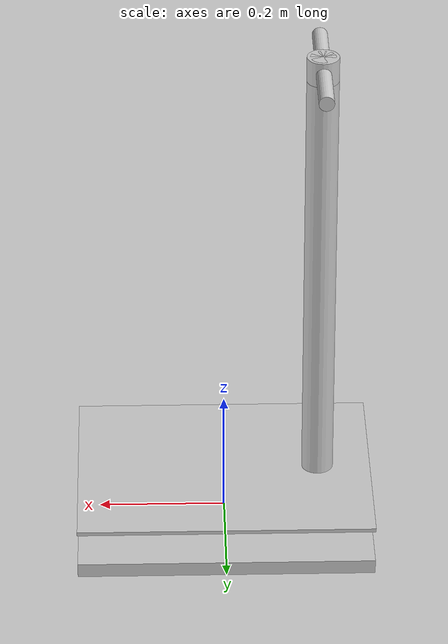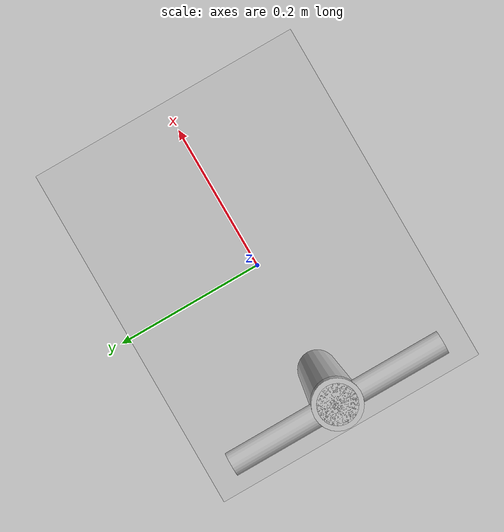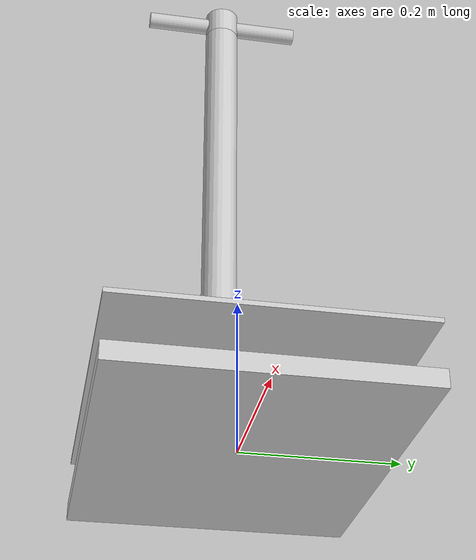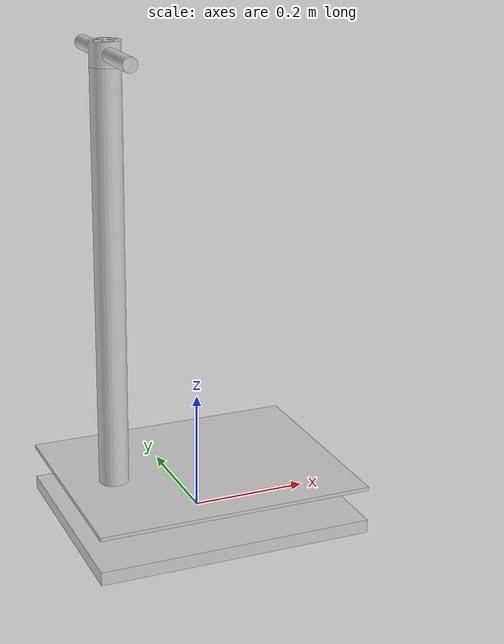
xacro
<?xml version="1.0"?>

<robot xmlns:sensor="http://playerstage.sourceforge.net/gazebo/xmlschema/#sensor"
  xmlns:controller="http://playerstage.sourceforge.net/gazebo/xmlschema/#controller"
  xmlns:interface="http://playerstage.sourceforge.net/gazebo/xmlschema/#interface"
  xmlns:xacro="http://ros.org/wiki/xacro"
  name="kurtana_rack">

  <xacro:include filename="$(find uos_common_urdf)/common.xacro" />

  <property name="rackplate_length" value="0.47" />
  <property name="rackplate_width" value="0.368" />
  <property name="rackplate_height" value="0.023" />
  <property name="rackplate_mass" value="0.500" />
  <property name="baseplate_length" value="0.47" />
  <property name="baseplate_width" value="0.368" />
  <property name="baseplate_height" value="0.006" />
  <property name="baseplate_mass" value="0.500" />
  <property name="rackgap" value="0.055" />
  <property name="pole_radius" value="0.025"/>
  <property name="pole_length" value="0.70"/>
  <property name="pole_x_offset" value="-0.15"/>
  <property name="pole_mass" value="3.0"/>
  <property name="innerpole_radius" value="0.02"/>
  <property name="innerpole_length" value="0.555"/>
  <property name="innerpole_z_offset" value="0.04"/>
  <property name="innerpole_mass" value="2.0"/>
  <property name="poletop_radius" value="0.025"/>
  <property name="poletop_length" value="0.04"/>
  <property name="poletop_mass" value="0.1"/>
  <property name="pitchpole_radius" value="0.012"/>
  <property name="pitchpole_length" value="0.23"/>
  <property name="pitchpole_mass" value="0.050"/>

  <!-- *** KURTana Rack *** -->

  <!-- rackplate = lower plate-->
  <link name="kurtana_rackplate_link">
    <visual>
      <origin xyz="0 0 0" rpy="0 0 0" />
      <geometry>
        <box size="${rackplate_length} ${rackplate_width} ${rackplate_height}" />
      </geometry>

      <material name="grey">
        <color rgba="0.8 0.8 0.8 1"/>
      </material>
    </visual>
    <collision>
      <origin xyz="0 0 0" rpy="0 0 0" />
      <geometry>
        <box size="${rackplate_length} ${rackplate_width} ${rackplate_height}" />
      </geometry>
    </collision>
    <xacro:box_inertial x="${rackplate_length}" y="${rackplate_width}" z="${rackplate_height}" mass="${rackplate_mass}" />
  </link>

  <!-- baseplate = upper plate -->
  <joint name="kurtana_baseplate_joint" type="fixed">
    <parent link="kurtana_rackplate_link"/>
    <child link="kurtana_baseplate_link"/>
    <origin xyz="0 0 ${rackplate_height/2 + rackgap + baseplate_height/2}"/>
  </joint>

  <link name="kurtana_baseplate_link">
    <visual>
      <origin xyz="0 0 0" rpy="0 0 0" />
      <geometry>
        <box size="${baseplate_length} ${baseplate_width} ${baseplate_height}" />
      </geometry>

      <material name="grey" />
    </visual>
    <collision>
      <origin xyz="0 0 0" rpy="0 0 0" />
      <geometry>
        <box size="${baseplate_length} ${baseplate_width} ${baseplate_height}" />
      </geometry>
    </collision>
    <xacro:box_inertial x="${baseplate_length}" y="${baseplate_width}" z="${baseplate_height}" mass="${baseplate_mass}" />
  </link>

  <!-- pole = lower, fixed, hollow pole -->
  <joint name="kurtana_pole_joint" type="fixed">
    <parent link="kurtana_baseplate_link"/>
    <child link="kurtana_pole_link"/>
    <origin xyz="${pole_x_offset} 0 ${pole_length/2}"/>
  </joint>

  <link name="kurtana_pole_link">
    <visual>
      <origin xyz="0 0 0" rpy="0 0 0" />
      <geometry>
        <cylinder radius="${pole_radius}" length="${pole_length}"/>
      </geometry>

      <material name="grey" />
    </visual>
    <collision>
      <origin xyz="0 0 0" rpy="0 0 0" />
      <geometry>
        <cylinder radius="${pole_radius}" length="${pole_length}"/>
      </geometry>
    </collision>
    <xacro:cylinder_inertial radius="${pole_radius}" length="${pole_length}" mass="${pole_mass}" />
  </link>

  <!-- innerpole = upper, inner, moving pole -->
  <joint name="kurtana_stretch_joint" type="prismatic">
    <parent link="kurtana_pole_link"/>
    <child link="kurtana_innerpole_stretch_link"/>
    <origin xyz="0 0 ${innerpole_z_offset + pole_length/2 - innerpole_length/2}" rpy="0 0 0"/>
    <limit effort="1000.0" lower="0" upper="${innerpole_length - innerpole_z_offset}" velocity="0.5"/>
    <axis xyz="0 0 1"/>
  </joint>

  <link name="kurtana_innerpole_stretch_link">
    <visual>
      <origin xyz="0 0 0" rpy="0 0 0" />
      <geometry>
        <cylinder radius="${innerpole_radius}" length="${innerpole_length}"/>
      </geometry>
      <material name="grey" />
    </visual>
    <collision>
      <origin xyz="0 0 0" rpy="0 0 0" />
      <geometry>
        <cylinder radius="${innerpole_radius}" length="${innerpole_length}"/>
      </geometry>
    </collision>
    <xacro:cylinder_inertial radius="${innerpole_radius}" length="${innerpole_length}" mass="${innerpole_mass}" />
  </link>

  <joint name="kurtana_roll_joint" type="revolute">
    <parent link="kurtana_innerpole_stretch_link"/>
    <child link="kurtana_poletop_roll_link"/>
    <origin xyz="0 0 ${innerpole_length/2 - innerpole_z_offset/2}" rpy="0 0 0"/>
    <axis xyz="0 0 1"/>
    <limit effort="1000.0" lower="${-M_PI/2}" upper="${M_PI/2}" velocity="2.0"/>
  </joint>

  <link name="kurtana_poletop_roll_link">
    <visual>
      <origin xyz="0 0 0" rpy="0 0 0" />
      <geometry>
        <cylinder radius="${poletop_radius}" length="${poletop_length}"/>
      </geometry>
      <material name="grey" />
    </visual>
    <collision>
      <origin xyz="0 0 0" rpy="0 0 0" />
      <geometry>
        <cylinder radius="${poletop_radius}" length="${poletop_length}"/>
      </geometry>
    </collision>
    <xacro:cylinder_inertial radius="${poletop_radius}" length="${poletop_length}" mass="${poletop_mass}" />
  </link>

  <!-- pitchpole = horizontal pole on top where kinect is mounted -->
  <joint name="kurtana_pitch_joint" type="revolute">
    <parent link="kurtana_poletop_roll_link" />
    <child link="kurtana_pitchpole_link" />
    <origin xyz="0 0 0" rpy="0 0 0"/>
    <axis xyz="0 1 0"/>
    <limit effort="1000.0" lower="${-M_PI/2}" upper="${M_PI/2}" velocity="2.0"/>
  </joint>

  <link name="kurtana_pitchpole_link">
    <visual>
      <origin rpy="${-M_PI/2} 0 0" xyz="0 0 0"/>
      <geometry>
        <cylinder radius="${pitchpole_radius}" length="${pitchpole_length}"/>
      </geometry>
      <material name="grey" />
    </visual>
    <collision>
      <origin rpy="${-M_PI/2} 0 0" xyz="0 0 0"/>
      <geometry>
        <cylinder radius="${pitchpole_radius}" length="${pitchpole_length}"/>
      </geometry>
    </collision>
    <xacro:cylinder_inertial radius="${pitchpole_radius}" length="${pitchpole_length}" mass="${pitchpole_mass}" />
  </link>

  <!-- *** Gazebo stuff *** -->

  <!-- transmissions are required by the controller manager (here: for simulation in gazebo) -->

  <xacro:macro name="kurtana_pole_transmission" params="name">
    <transmission name="${name}_trans" type="pr2_mechanism_model/SimpleTransmission">
      <actuator name="${name}_motor" />
      <joint name="${name}_joint" />
      <mechanicalReduction>1</mechanicalReduction>
      <motorTorqueConstant>1</motorTorqueConstant>
    </transmission>
  </xacro:macro>

  <xacro:kurtana_pole_transmission name="kurtana_stretch" />
  <xacro:kurtana_pole_transmission name="kurtana_roll" />
  <xacro:kurtana_pole_transmission name="kurtana_pitch" />

  <gazebo reference="kurtana_rackplate_link">
    <material value="Gazebo/Grey" />
  </gazebo>

  <gazebo reference="kurtana_baseplate_link">
    <material value="Gazebo/Grey" />
  </gazebo>

  <gazebo reference="kurtana_pole_link">
    <material value="Gazebo/Grey" />
  </gazebo>

  <gazebo reference="kurtana_innerpole_stretch_link">
    <material value="Gazebo/Grey" />
  </gazebo>

  <gazebo reference="kurtana_poletop_roll_link">
    <material value="Gazebo/Grey" />
  </gazebo>

  <gazebo reference="kurtana_pitchpole_link">
    <material value="Gazebo/Grey" />
  </gazebo>
</robot>
